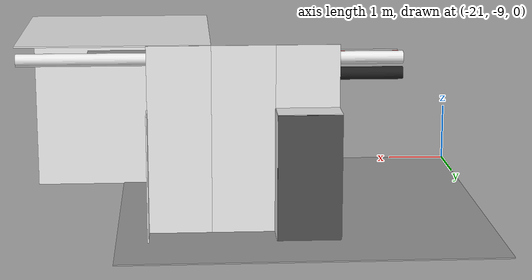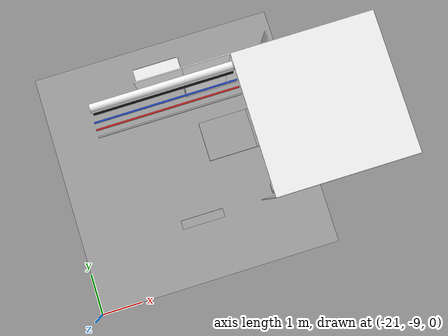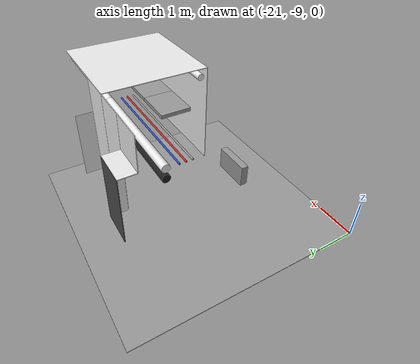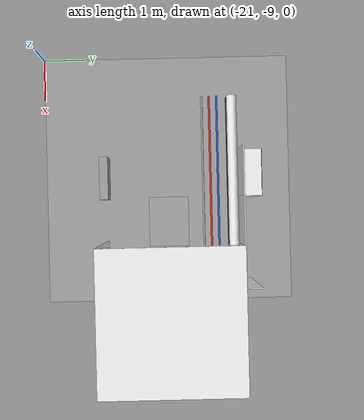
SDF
<sdf version="1.6">
 <world name="default">
  <model name="wall_left_-5_-2_0_1">
   <static>1</static>
   <pose>-15.0 -7.5 1.5 0.0 0.0 3.14</pose>
   <link name="link">
    <collision name="collision"><geometry><box><size>3.0 0.02 3.0</size></box></geometry></collision>
    <visual name="visual">
     <material>
      <script><name>Gazebo/White</name><uri>file://media/materials/scripts/gazebo.material</uri></script>
     </material>
     <geometry><box><size>3.0 0.02 3.0</size></box></geometry>
    </visual>
   </link>
  </model>
  <model name="wall_top_-5_-2_0_1">
   <static>1</static>
   <pose>-15.0 -6.0 3.0 1.57 0.0 1.57</pose>
   <link name="link">
    <collision name="collision"><geometry><box><size>3.0 0.02 3.0</size></box></geometry></collision>
    <visual name="visual">
     <material>
      <script><name>Gazebo/White</name><uri>file://media/materials/scripts/gazebo.material</uri></script>
     </material>
     <geometry><box><size>3.0 0.02 3.0</size></box></geometry>
    </visual>
   </link>
  </model>
  <model name="ceiling_1_-5_-2_0_1">
   <pose>-15.0 -6.0 2.55 0.0 0.0 1.57</pose>
   <link name="link_1">
    <visual name="visual">
     <geometry><box><size>0.8 1 0.1</size></box></geometry>
     <material>
      <script><uri>file://media/materials/scripts/gazebo.material</uri><name>Gazebo/Grey</name></script>
     </material>
    </visual>
    <collision name="collision"><geometry><box><size>0.8 1 0.1</size></box></geometry></collision>
   </link>
   <static>1</static>
  </model>
  <model name="ceiling_1_-5_-2_2_1">
   <pose>-16.0 -6.0 2.55 0.0 0.0 1.57</pose>
   <link name="link_1">
    <visual name="visual">
     <geometry><box><size>0.8 1 0.1</size></box></geometry>
     <material>
      <script><uri>file://media/materials/scripts/gazebo.material</uri><name>Gazebo/Grey</name></script>
     </material>
    </visual>
    <collision name="collision"><geometry><box><size>0.8 1 0.1</size></box></geometry></collision>
   </link>
   <static>1</static>
  </model>
  <model name="white_pipe_left_-5_-2_0_1">
   <static>1</static>
   <pose>-15.0 -6.0 2.76 0.0 0.0 1.57</pose>
   <link name="link_0">
    <visual name="visual">
     <pose>-1.3 0 0 1.57 0 0</pose>
     <geometry><cylinder><radius>0.1</radius><length>3.0</length></cylinder></geometry>
     <material>
      <script><uri>file://media/materials/scripts/gazebo.material</uri><name>Gazebo/White</name></script>
     </material>
    </visual>
    <collision name="collision">
     <pose>-1.3 0 0 1.57 0 0</pose>
     <geometry><cylinder><radius>0.1</radius><length>3.0</length></cylinder></geometry>
    </collision>
   </link>
  </model>
  <model name="white_pipe_right_-5_-2_0_1">
   <static>1</static>
   <pose>-15.0 -6.0 2.76 0.0 0.0 1.57</pose>
   <link name="link_0">
    <visual name="visual">
     <pose>1.3 0 0 1.57 0 0</pose>
     <geometry><cylinder><radius>0.1</radius><length>3.0</length></cylinder></geometry>
     <material>
      <script><uri>file://media/materials/scripts/gazebo.material</uri><name>Gazebo/White</name></script>
     </material>
    </visual>
    <collision name="collision">
     <pose>1.3 0 0 1.57 0 0</pose>
     <geometry><cylinder><radius>0.1</radius><length>3.0</length></cylinder></geometry>
    </collision>
   </link>
  </model>
  <model name="wall_right_front_left_-5_-2_0_1">
   <static>1</static>
   <pose>-16.0 -4.5 1.5 0.0 0.0 3.14</pose>
   <link name="link">
    <collision name="collision"><geometry><box><size>1.0 0.02 3.0</size></box></geometry></collision>
    <visual name="visual">
     <material>
      <script><name>Gazebo/White</name><uri>file://media/materials/scripts/gazebo.material</uri></script>
     </material>
     <geometry><box><size>1.0 0.02 3.0</size></box></geometry>
    </visual>
   </link>
  </model>
  <model name="wall_right_inside_left_-5_-2_0_1">
   <static>1</static>
   <pose>-15.5 -4.25 1.0 0.0 0.0 1.57</pose>
   <link name="link">
    <collision name="collision"><geometry><box><size>0.5 0.02 2</size></box></geometry></collision>
    <visual name="visual">
     <material>
      <script><name>Gazebo/White</name><uri>file://media/materials/scripts/gazebo.material</uri></script>
     </material>
     <geometry><box><size>0.5 0.02 2</size></box></geometry>
    </visual>
   </link>
  </model>
  <model name="ceiling_1_-6_-2_1_1">
   <pose>-17.0 -6.0 2.55 0.0 0.0 1.57</pose>
   <link name="link_1">
    <visual name="visual">
     <geometry><box><size>0.8 1 0.1</size></box></geometry>
     <material>
      <script><uri>file://media/materials/scripts/gazebo.material</uri><name>Gazebo/Grey</name></script>
     </material>
    </visual>
    <collision name="collision"><geometry><box><size>0.8 1 0.1</size></box></geometry></collision>
   </link>
   <static>1</static>
  </model>
  <model name="white_pipe_right_-6_-2_0_1">
   <static>1</static>
   <pose>-18.0 -6.0 2.76 0.0 0.0 1.57</pose>
   <link name="link_0">
    <visual name="visual">
     <pose>1.3 0 0 1.57 0 0</pose>
     <geometry><cylinder><radius>0.1</radius><length>3.0</length></cylinder></geometry>
     <material>
      <script><uri>file://media/materials/scripts/gazebo.material</uri><name>Gazebo/White</name></script>
     </material>
    </visual>
    <collision name="collision">
     <pose>1.3 0 0 1.57 0 0</pose>
     <geometry><cylinder><radius>0.1</radius><length>3.0</length></cylinder></geometry>
    </collision>
   </link>
  </model>
  <model name="black_pipe_right_-6_-2_0_1">
   <static>1</static>
   <pose>-18.0 -6.0 2.76 0.0 0.0 1.57</pose>
   <link name="link_0">
    <visual name="visual">
     <pose>1.3 0 -0.25 1.57 0 0</pose>
     <geometry><cylinder><radius>0.1</radius><length>3.0</length></cylinder></geometry>
     <material>
      <script><uri>file://media/materials/scripts/gazebo.material</uri><name>Gazebo/Black</name></script>
     </material>
    </visual>
    <collision name="collision">
     <pose>1.3 0 -0.25 1.57 0 0</pose>
     <geometry><cylinder><radius>0.1</radius><length>3.0</length></cylinder></geometry>
    </collision>
   </link>
  </model>
  <model name="grey_pipe_right_-6_-2_0_1">
   <static>1</static>
   <pose>-18.0 -6.0 2.76 0.0 0.0 1.57</pose>
   <link name="link_0">
    <visual name="visual">
     <pose>0.7 0 0 1.57 0 0</pose>
     <geometry><cylinder><radius>0.02</radius><length>3.0</length></cylinder></geometry>
     <material>
      <script><uri>file://media/materials/scripts/gazebo.material</uri><name>Gazebo/Grey</name></script>
     </material>
    </visual>
    <collision name="collision">
     <pose>0.7 0 0 1.57 0 0</pose>
     <geometry><cylinder><radius>0.02</radius><length>3.0</length></cylinder></geometry>
    </collision>
   </link>
  </model>
  <model name="red_pipe_right_-6_-2_0_1">
   <static>1</static>
   <pose>-18.0 -6.0 2.76 0.0 0.0 1.57</pose>
   <link name="link_0">
    <visual name="visual">
     <pose>0.85 0 0 1.57 0 0</pose>
     <geometry><cylinder><radius>0.02</radius><length>3.0</length></cylinder></geometry>
     <material>
      <script><uri>file://media/materials/scripts/gazebo.material</uri><name>Gazebo/Red</name></script>
     </material>
    </visual>
    <collision name="collision">
     <pose>0.85 0 0 1.57 0 0</pose>
     <geometry><cylinder><radius>0.02</radius><length>3.0</length></cylinder></geometry>
    </collision>
   </link>
  </model>
  <model name="blue_pipe_right_-6_-2_0_1">
   <static>1</static>
   <pose>-18.0 -6.0 2.76 0.0 0.0 1.57</pose>
   <link name="link_0">
    <visual name="visual">
     <pose>1 0 0 1.57 0 0</pose>
     <geometry><cylinder><radius>0.02</radius><length>3.0</length></cylinder></geometry>
     <material>
      <script><uri>file://media/materials/scripts/gazebo.material</uri><name>Gazebo/Blue</name></script>
     </material>
    </visual>
    <collision name="collision">
     <pose>1 0 0 1.57 0 0</pose>
     <geometry><cylinder><radius>0.02</radius><length>3.0</length></cylinder></geometry>
    </collision>
   </link>
  </model>
  <model name="wall_bottom_-6_-2_0_1">
   <static>1</static>
   <pose>-18.0 -6.0 0.0 0.0 0.0 1.57</pose>
   <link name="link">
    <collision name="collision"><geometry><box><size>6.0 6.0 0.02</size></box></geometry></collision>
    <visual name="visual">
     <material>
      <script><name>Gazebo/Grey</name><uri>file://media/materials/scripts/gazebo.material</uri></script>
     </material>
     <geometry><box><size>6.0 6.0 0.02</size></box></geometry>
    </visual>
   </link>
  </model>
  <model name="wall_right_front_right_-6_-2_0_1">
   <static>1</static>
   <pose>-17.0 -4.5 1.5 0.0 0.0 3.14</pose>
   <link name="link">
    <collision name="collision"><geometry><box><size>1.0 0.02 3.0</size></box></geometry></collision>
    <visual name="visual">
     <material>
      <script><name>Gazebo/White</name><uri>file://media/materials/scripts/gazebo.material</uri></script>
     </material>
     <geometry><box><size>1.0 0.02 3.0</size></box></geometry>
    </visual>
   </link>
  </model>
  <model name="wall_right_front_up_-6_-2_0_1">
   <static>1</static>
   <pose>-18.0 -4.5 2.5 0.0 0.0 3.14</pose>
   <link name="link">
    <collision name="collision"><geometry><box><size>1.0 0.02 1.0</size></box></geometry></collision>
    <visual name="visual">
     <material>
      <script><name>Gazebo/White</name><uri>file://media/materials/scripts/gazebo.material</uri></script>
     </material>
     <geometry><box><size>1.0 0.02 1.0</size></box></geometry>
    </visual>
   </link>
  </model>
  <model name="wall_right_inside_back_-6_-2_0_1">
   <static>1</static>
   <pose>-18.0 -4.0 1.0 0.0 0.0 3.14</pose>
   <link name="link">
    <collision name="collision"><geometry><box><size>1 0.02 2</size></box></geometry></collision>
    <visual name="visual">
     <material>
      <script><name>Gazebo/DarkGrey</name><uri>file://media/materials/scripts/gazebo.material</uri></script>
     </material>
     <geometry><box><size>1 0.02 2</size></box></geometry>
    </visual>
   </link>
  </model>
  <model name="wall_right_inside_right_-6_-2_0_1">
   <static>1</static>
   <pose>-17.5 -4.25 1.0 0.0 0.0 1.57</pose>
   <link name="link">
    <collision name="collision"><geometry><box><size>0.5 0.02 2</size></box></geometry></collision>
    <visual name="visual">
     <material>
      <script><name>Gazebo/White</name><uri>file://media/materials/scripts/gazebo.material</uri></script>
     </material>
     <geometry><box><size>0.5 0.02 2</size></box></geometry>
    </visual>
   </link>
  </model>
  <model name="wall_right_inside_top_-6_-2_0_1">
   <static>1</static>
   <pose>-18.0 -4.25 2.0 1.57 0.0 3.14</pose>
   <link name="link">
    <collision name="collision"><geometry><box><size>1 0.02 0.5</size></box></geometry></collision>
    <visual name="visual">
     <material>
      <script><name>Gazebo/White</name><uri>file://media/materials/scripts/gazebo.material</uri></script>
     </material>
     <geometry><box><size>1 0.02 0.5</size></box></geometry>
    </visual>
   </link>
  </model>
  <model name="panel_-6_-2_0_1">
   <static>1</static>
   <pose>-18.0 -7.5 0.66 0.0 0.0 1.57</pose>
   <link name="link">
    <collision name="collision"><geometry><box><size>0.2 1 0.6</size></box></geometry></collision>
    <visual name="visual">
     <material>
      <script><name>Gazebo/Grey</name><uri>file://media/materials/scripts/gazebo.material</uri></script>
     </material>
     <geometry><box><size>0.2 1 0.6</size></box></geometry>
    </visual>
   </link>
  </model>
 </world>
</sdf>
